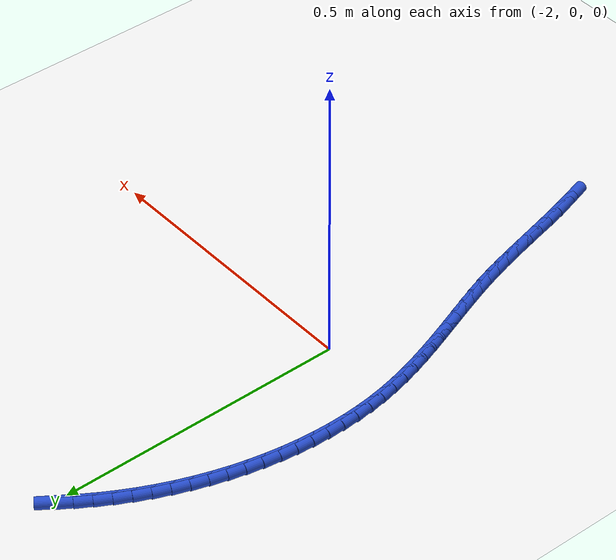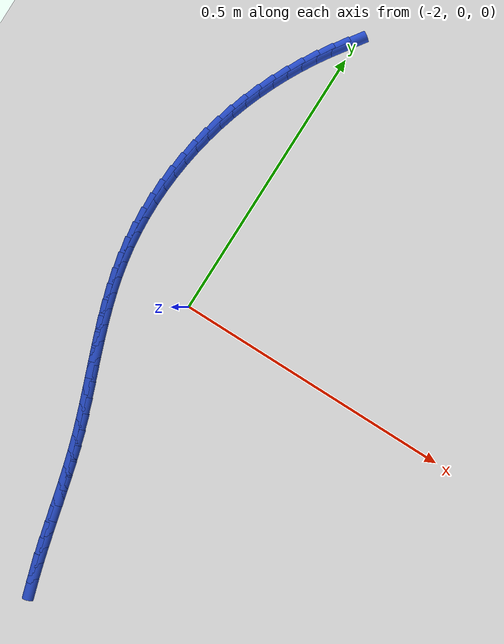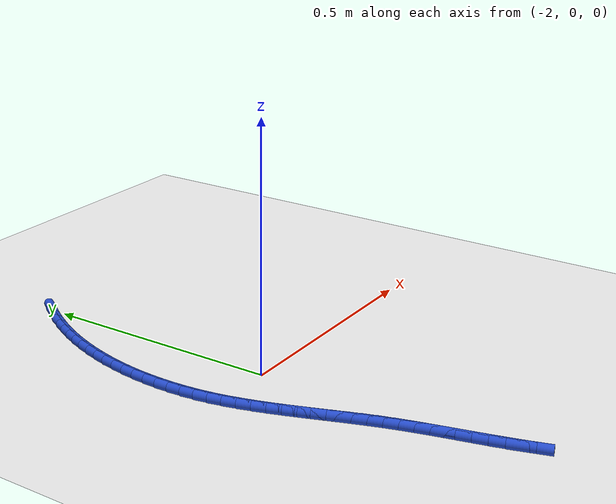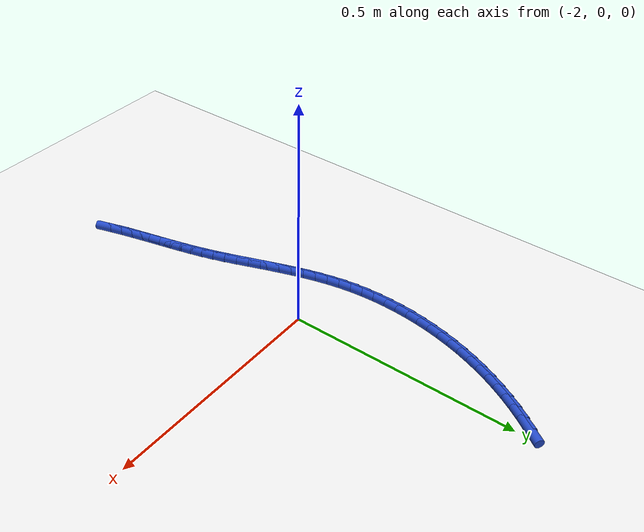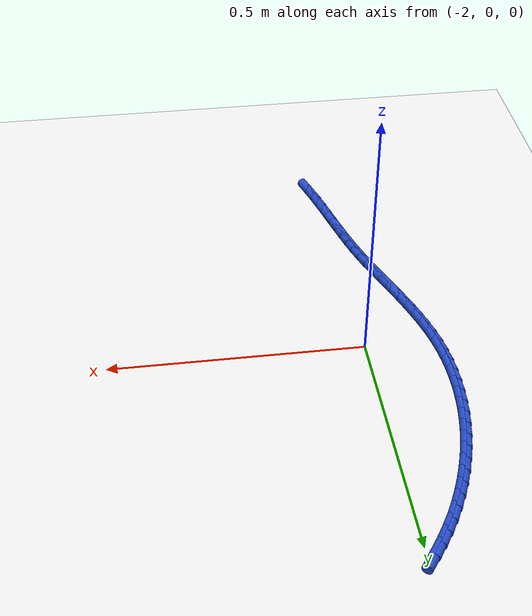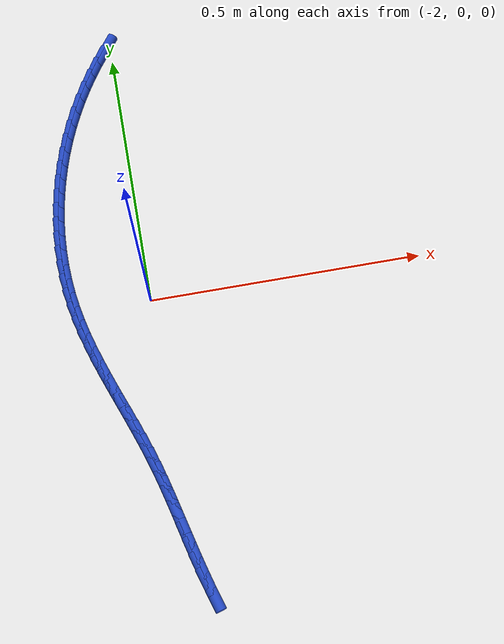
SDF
<sdf version="1.6">
 <world name="default">
  <model name="ground_plane">
   <static>1</static>
   <link name="link">
    <collision name="collision">
     <geometry><plane><normal>0 0 1</normal><size>100 100</size></plane></geometry>
     <surface><friction><ode><mu>100</mu><mu2>50</mu2></ode></friction></surface>
    </collision>
    <visual name="visual">
     <cast_shadows>0</cast_shadows>
     <geometry><plane><normal>0 0 1</normal><size>100 100</size></plane></geometry>
     <material>
      <script><uri>file://media/materials/scripts/gazebo.material</uri><name>Gazebo/WhiteGlow</name></script>
     </material>
    </visual>
   </link>
  </model>
  <model name="line">
   <link name="link_100">
    <pose>-2.0139855540574887 0.5182544695513112 0.01 0 1.57 0.9605735222294822</pose>
    <collision name="collision">
     <geometry><cylinder><radius>0.01</radius><length>0.08</length></cylinder></geometry>
    </collision>
    <visual name="visual">
     <material>
      <script><name>Gazebo/Blue</name><uri>file://media/materials/scripts/gazebo.material</uri></script>
     </material>
     <geometry><cylinder><radius>0.01</radius><length>0.08</length></cylinder></geometry>
    </visual>
   </link>
   <link name="link_101">
    <pose>-2.030164244204602 0.4951172835830111 0.01 0 1.57 1.001293382315827</pose>
    <collision name="collision">
     <geometry><cylinder><radius>0.01</radius><length>0.08</length></cylinder></geometry>
    </collision>
    <visual name="visual">
     <material>
      <script><name>Gazebo/Blue</name><uri>file://media/materials/scripts/gazebo.material</uri></script>
     </material>
     <geometry><cylinder><radius>0.01</radius><length>0.08</length></cylinder></geometry>
    </visual>
   </link>
   <link name="link_102">
    <pose>-2.0454129637026943 0.47130111411124304 0.01 0 1.57 1.042073513890765</pose>
    <collision name="collision">
     <geometry><cylinder><radius>0.01</radius><length>0.08</length></cylinder></geometry>
    </collision>
    <visual name="visual">
     <material>
      <script><name>Gazebo/Blue</name><uri>file://media/materials/scripts/gazebo.material</uri></script>
     </material>
     <geometry><cylinder><radius>0.01</radius><length>0.08</length></cylinder></geometry>
    </visual>
   </link>
   <link name="link_103">
    <pose>-2.0597038626648287 0.44683888521866805 0.01 0 1.57 1.0829619658160066</pose>
    <collision name="collision">
     <geometry><cylinder><radius>0.01</radius><length>0.08</length></cylinder></geometry>
    </collision>
    <visual name="visual">
     <material>
      <script><name>Gazebo/Blue</name><uri>file://media/materials/scripts/gazebo.material</uri></script>
     </material>
     <geometry><cylinder><radius>0.01</radius><length>0.08</length></cylinder></geometry>
    </visual>
   </link>
   <link name="link_104">
    <pose>-2.07300909120407 0.421763520987947 0.01 0 1.57 1.1240042019081184</pose>
    <collision name="collision">
     <geometry><cylinder><radius>0.01</radius><length>0.08</length></cylinder></geometry>
    </collision>
    <visual name="visual">
     <material>
      <script><name>Gazebo/Blue</name><uri>file://media/materials/scripts/gazebo.material</uri></script>
     </material>
     <geometry><cylinder><radius>0.01</radius><length>0.08</length></cylinder></geometry>
    </visual>
   </link>
   <link name="link_105">
    <pose>-2.085300799505579 0.3961079458754709 0.01 0 1.57 1.1651364799601855</pose>
    <collision name="collision">
     <geometry><cylinder><radius>0.01</radius><length>0.08</length></cylinder></geometry>
    </collision>
    <visual name="visual">
     <material>
      <script><name>Gazebo/Blue</name><uri>file://media/materials/scripts/gazebo.material</uri></script>
     </material>
     <geometry><cylinder><radius>0.01</radius><length>0.08</length></cylinder></geometry>
    </visual>
   </link>
   <link name="link_106">
    <pose>-2.0965521572744685 0.369910369241611 0.01 0 1.57 1.2060684940001019</pose>
    <collision name="collision">
     <geometry><cylinder><radius>0.01</radius><length>0.08</length></cylinder></geometry>
    </collision>
    <visual name="visual">
     <material>
      <script><name>Gazebo/Blue</name><uri>file://media/materials/scripts/gazebo.material</uri></script>
     </material>
     <geometry><cylinder><radius>0.01</radius><length>0.08</length></cylinder></geometry>
    </visual>
   </link>
   <link name="link_107">
    <pose>-2.1067399182539646 0.3432275790897737 0.01 0 1.57 1.2468562923244804</pose>
    <collision name="collision">
     <geometry><cylinder><radius>0.01</radius><length>0.08</length></cylinder></geometry>
    </collision>
    <visual name="visual">
     <material>
      <script><name>Gazebo/Blue</name><uri>file://media/materials/scripts/gazebo.material</uri></script>
     </material>
     <geometry><cylinder><radius>0.01</radius><length>0.08</length></cylinder></geometry>
    </visual>
   </link>
   <link name="link_108">
    <pose>-2.115841623333502 0.31612044376736786 0.01 0 1.57 1.2876421689406725</pose>
    <collision name="collision">
     <geometry><cylinder><radius>0.01</radius><length>0.08</length></cylinder></geometry>
    </collision>
    <visual name="visual">
     <material>
      <script><name>Gazebo/Blue</name><uri>file://media/materials/scripts/gazebo.material</uri></script>
     </material>
     <geometry><cylinder><radius>0.01</radius><length>0.08</length></cylinder></geometry>
    </visual>
   </link>
   <link name="link_109">
    <pose>-2.1238348134025116 0.28864983162180324 0.01 0 1.57 1.3285674898002886</pose>
    <collision name="collision">
     <geometry><cylinder><radius>0.01</radius><length>0.08</length></cylinder></geometry>
    </collision>
    <visual name="visual">
     <material>
      <script><name>Gazebo/Blue</name><uri>file://media/materials/scripts/gazebo.material</uri></script>
     </material>
     <geometry><cylinder><radius>0.01</radius><length>0.08</length></cylinder></geometry>
    </visual>
   </link>
   <link name="link_110">
    <pose>-2.1306970293504275 0.26087661100048865 0.01 0 1.57 1.3697724400306166</pose>
    <collision name="collision">
     <geometry><cylinder><radius>0.01</radius><length>0.08</length></cylinder></geometry>
    </collision>
    <visual name="visual">
     <material>
      <script><name>Gazebo/Blue</name><uri>file://media/materials/scripts/gazebo.material</uri></script>
     </material>
     <geometry><cylinder><radius>0.01</radius><length>0.08</length></cylinder></geometry>
    </visual>
   </link>
   <link name="link_111">
    <pose>-2.136405812066684 0.23286165025083336 0.01 0 1.57 1.4113956860137278</pose>
    <collision name="collision">
     <geometry><cylinder><radius>0.01</radius><length>0.08</length></cylinder></geometry>
    </collision>
    <visual name="visual">
     <material>
      <script><name>Gazebo/Blue</name><uri>file://media/materials/scripts/gazebo.material</uri></script>
     </material>
     <geometry><cylinder><radius>0.01</radius><length>0.08</length></cylinder></geometry>
    </visual>
   </link>
   <link name="link_112">
    <pose>-2.1409387024407134 0.2046658177202461 0.01 0 1.57 1.4535738826807318</pose>
    <collision name="collision">
     <geometry><cylinder><radius>0.01</radius><length>0.08</length></cylinder></geometry>
    </collision>
    <visual name="visual">
     <material>
      <script><name>Gazebo/Blue</name><uri>file://media/materials/scripts/gazebo.material</uri></script>
     </material>
     <geometry><cylinder><radius>0.01</radius><length>0.08</length></cylinder></geometry>
    </visual>
   </link>
   <link name="link_113">
    <pose>-2.144273241361949 0.17634998175613684 0.01 0 1.57 1.496440955202695</pose>
    <collision name="collision">
     <geometry><cylinder><radius>0.01</radius><length>0.08</length></cylinder></geometry>
    </collision>
    <visual name="visual">
     <material>
      <script><name>Gazebo/Blue</name><uri>file://media/materials/scripts/gazebo.material</uri></script>
     </material>
     <geometry><cylinder><radius>0.01</radius><length>0.08</length></cylinder></geometry>
    </visual>
   </link>
   <link name="link_114">
    <pose>-2.146386969719824 0.14797501070591434 0.01 0 1.57 1.5401270829545246</pose>
    <collision name="collision">
     <geometry><cylinder><radius>0.01</radius><length>0.08</length></cylinder></geometry>
    </collision>
    <visual name="visual">
     <material>
      <script><name>Gazebo/Blue</name><uri>file://media/materials/scripts/gazebo.material</uri></script>
     </material>
     <geometry><cylinder><radius>0.01</radius><length>0.08</length></cylinder></geometry>
    </visual>
   </link>
   <link name="link_115">
    <pose>-2.147257428403772 0.1196017729169874 0.01 0 1.57 -1.55683533993788</pose>
    <collision name="collision">
     <geometry><cylinder><radius>0.01</radius><length>0.08</length></cylinder></geometry>
    </collision>
    <visual name="visual">
     <material>
      <script><name>Gazebo/Blue</name><uri>file://media/materials/scripts/gazebo.material</uri></script>
     </material>
     <geometry><cylinder><radius>0.01</radius><length>0.08</length></cylinder></geometry>
    </visual>
   </link>
   <link name="link_116">
    <pose>-2.1468621583032257 0.09129113673676593 0.01 0 1.57 -1.5111429146714528</pose>
    <collision name="collision">
     <geometry><cylinder><radius>0.01</radius><length>0.08</length></cylinder></geometry>
    </collision>
    <visual name="visual">
     <material>
      <script><name>Gazebo/Blue</name><uri>file://media/materials/scripts/gazebo.material</uri></script>
     </material>
     <geometry><cylinder><radius>0.01</radius><length>0.08</length></cylinder></geometry>
    </visual>
   </link>
   <link name="link_117">
    <pose>-2.1451787003076195 0.06310397051265884 0.01 0 1.57 -1.4642794817210734</pose>
    <collision name="collision">
     <geometry><cylinder><radius>0.01</radius><length>0.08</length></cylinder></geometry>
    </collision>
    <visual name="visual">
     <material>
      <script><name>Gazebo/Blue</name><uri>file://media/materials/scripts/gazebo.material</uri></script>
     </material>
     <geometry><cylinder><radius>0.01</radius><length>0.08</length></cylinder></geometry>
    </visual>
   </link>
   <link name="link_118">
    <pose>-2.142184595306385 0.03510114259207512 0.01 0 1.57 -1.4161483744494114</pose>
    <collision name="collision">
     <geometry><cylinder><radius>0.01</radius><length>0.08</length></cylinder></geometry>
    </collision>
    <visual name="visual">
     <material>
      <script><name>Gazebo/Blue</name><uri>file://media/materials/scripts/gazebo.material</uri></script>
     </material>
     <geometry><cylinder><radius>0.01</radius><length>0.08</length></cylinder></geometry>
    </visual>
   </link>
   <link name="link_119">
    <pose>-2.137857384365703 0.007343521241138437 0.01 0 1.57 -1.368073335322618</pose>
    <collision name="collision">
     <geometry><cylinder><radius>0.01</radius><length>0.08</length></cylinder></geometry>
    </collision>
    <visual name="visual">
     <material>
      <script><name>Gazebo/Blue</name><uri>file://media/materials/scripts/gazebo.material</uri></script>
     </material>
     <geometry><cylinder><radius>0.01</radius><length>0.08</length></cylinder></geometry>
    </visual>
   </link>
   <link name="link_120">
    <pose>-2.132211342810018 -0.020124919238106588 0.01 0 1.57 -1.3254312612473649</pose>
    <collision name="collision">
     <geometry><cylinder><radius>0.01</radius><length>0.08</length></cylinder></geometry>
    </collision>
    <visual name="visual">
     <material>
      <script><name>Gazebo/Blue</name><uri>file://media/materials/scripts/gazebo.material</uri></script>
     </material>
     <geometry><cylinder><radius>0.01</radius><length>0.08</length></cylinder></geometry>
    </visual>
   </link>
   <link name="link_121">
    <pose>-2.125400307607433 -0.04732438848270661 0.01 0 1.57 -1.2896020849260996</pose>
    <collision name="collision">
     <geometry><cylinder><radius>0.01</radius><length>0.08</length></cylinder></geometry>
    </collision>
    <visual name="visual">
     <material>
      <script><name>Gazebo/Blue</name><uri>file://media/materials/scripts/gazebo.material</uri></script>
     </material>
     <geometry><cylinder><radius>0.01</radius><length>0.08</length></cylinder></geometry>
    </visual>
   </link>
   <link name="link_122">
    <pose>-2.117611253952663 -0.07429033629070539 0.01 0 1.57 -1.2606062650558665</pose>
    <collision name="collision">
     <geometry><cylinder><radius>0.01</radius><length>0.08</length></cylinder></geometry>
    </collision>
    <visual name="visual">
     <material>
      <script><name>Gazebo/Blue</name><uri>file://media/materials/scripts/gazebo.material</uri></script>
     </material>
     <geometry><cylinder><radius>0.01</radius><length>0.08</length></cylinder></geometry>
    </visual>
   </link>
   <link name="link_123">
    <pose>-2.1090311570404254 -0.10105821246014679 0.01 0 1.57 -1.2384030128663903</pose>
    <collision name="collision">
     <geometry><cylinder><radius>0.01</radius><length>0.08</length></cylinder></geometry>
    </collision>
    <visual name="visual">
     <material>
      <script><name>Gazebo/Blue</name><uri>file://media/materials/scripts/gazebo.material</uri></script>
     </material>
     <geometry><cylinder><radius>0.01</radius><length>0.08</length></cylinder></geometry>
    </visual>
   </link>
   <link name="link_124">
    <pose>-2.099846992065436 -0.12766346678907464 0.01 0 1.57 -1.2229307689024895</pose>
    <collision name="collision">
     <geometry><cylinder><radius>0.01</radius><length>0.08</length></cylinder></geometry>
    </collision>
    <visual name="visual">
     <material>
      <script><name>Gazebo/Blue</name><uri>file://media/materials/scripts/gazebo.material</uri></script>
     </material>
     <geometry><cylinder><radius>0.01</radius><length>0.08</length></cylinder></geometry>
    </visual>
   </link>
   <link name="link_125">
    <pose>-2.090245734222409 -0.1541415490755334 0.01 0 1.57 -1.2141374890386685</pose>
    <collision name="collision">
     <geometry><cylinder><radius>0.01</radius><length>0.08</length></cylinder></geometry>
    </collision>
    <visual name="visual">
     <material>
      <script><name>Gazebo/Blue</name><uri>file://media/materials/scripts/gazebo.material</uri></script>
     </material>
     <geometry><cylinder><radius>0.01</radius><length>0.08</length></cylinder></geometry>
    </visual>
   </link>
   <link name="link_126">
    <pose>-2.0804143587060615 -0.18052790911756547 0.01 0 1.57 -1.2120011785899536</pose>
    <collision name="collision">
     <geometry><cylinder><radius>0.01</radius><length>0.08</length></cylinder></geometry>
    </collision>
    <visual name="visual">
     <material>
      <script><name>Gazebo/Blue</name><uri>file://media/materials/scripts/gazebo.material</uri></script>
     </material>
     <geometry><cylinder><radius>0.01</radius><length>0.08</length></cylinder></geometry>
    </visual>
   </link>
   <link name="link_127">
    <pose>-2.07053984071111 -0.20685799671321545 0.01 0 1.57 -1.2165415430570916</pose>
    <collision name="collision">
     <geometry><cylinder><radius>0.01</radius><length>0.08</length></cylinder></geometry>
    </collision>
    <visual name="visual">
     <material>
      <script><name>Gazebo/Blue</name><uri>file://media/materials/scripts/gazebo.material</uri></script>
     </material>
     <geometry><cylinder><radius>0.01</radius><length>0.08</length></cylinder></geometry>
    </visual>
   </link>
   <link name="link_128">
    <pose>-2.0608091554322696 -0.23316726166052706 0.01 0 1.57 -1.2278233505292329</pose>
    <collision name="collision">
     <geometry><cylinder><radius>0.01</radius><length>0.08</length></cylinder></geometry>
    </collision>
    <visual name="visual">
     <material>
      <script><name>Gazebo/Blue</name><uri>file://media/materials/scripts/gazebo.material</uri></script>
     </material>
     <geometry><cylinder><radius>0.01</radius><length>0.08</length></cylinder></geometry>
    </visual>
   </link>
   <link name="link_129">
    <pose>-2.051409278064257 -0.2594911537575442 0.01 0 1.57 -1.2459514486265786</pose>
    <collision name="collision">
     <geometry><cylinder><radius>0.01</radius><length>0.08</length></cylinder></geometry>
    </collision>
    <visual name="visual">
     <material>
      <script><name>Gazebo/Blue</name><uri>file://media/materials/scripts/gazebo.material</uri></script>
     </material>
     <geometry><cylinder><radius>0.01</radius><length>0.08</length></cylinder></geometry>
    </visual>
   </link>
   <link name="link_130">
    <pose>-2.0425271838017864 -0.2858651228023106 0.01 0 1.57 -1.2703431306392174</pose>
    <collision name="collision">
     <geometry><cylinder><radius>0.01</radius><length>0.08</length></cylinder></geometry>
    </collision>
    <visual name="visual">
     <material>
      <script><name>Gazebo/Blue</name><uri>file://media/materials/scripts/gazebo.material</uri></script>
     </material>
     <geometry><cylinder><radius>0.01</radius><length>0.08</length></cylinder></geometry>
    </visual>
   </link>
   <link name="link_131">
    <pose>-2.034329586784084 -0.3123232475309808 0.01 0 1.57 -1.293619150744632</pose>
    <collision name="collision">
     <geometry><cylinder><radius>0.01</radius><length>0.08</length></cylinder></geometry>
    </collision>
    <visual name="visual">
     <material>
      <script><name>Gazebo/Blue</name><uri>file://media/materials/scripts/gazebo.material</uri></script>
     </material>
     <geometry><cylinder><radius>0.01</radius><length>0.08</length></cylinder></geometry>
    </visual>
   </link>
   <link name="link_132">
    <pose>-2.0267726512450266 -0.33888535880643567 0.01 0 1.57 -1.3112104932519524</pose>
    <collision name="collision">
     <geometry><cylinder><radius>0.01</radius><length>0.08</length></cylinder></geometry>
    </collision>
    <visual name="visual">
     <material>
      <script><name>Gazebo/Blue</name><uri>file://media/materials/scripts/gazebo.material</uri></script>
     </material>
     <geometry><cylinder><radius>0.01</radius><length>0.08</length></cylinder></geometry>
    </visual>
   </link>
   <link name="link_133">
    <pose>-2.0196876962882198 -0.3655628392446075 0.01 0 1.57 -1.322931237999049</pose>
    <collision name="collision">
     <geometry><cylinder><radius>0.01</radius><length>0.08</length></cylinder></geometry>
    </collision>
    <visual name="visual">
     <material>
      <script><name>Gazebo/Blue</name><uri>file://media/materials/scripts/gazebo.material</uri></script>
     </material>
     <geometry><cylinder><radius>0.01</radius><length>0.08</length></cylinder></geometry>
    </visual>
   </link>
   <link name="link_134">
    <pose>-2.0129044027488243 -0.3923669606001068 0.01 0 1.57 -1.3287387235723722</pose>
    <collision name="collision">
     <geometry><cylinder><radius>0.01</radius><length>0.08</length></cylinder></geometry>
    </collision>
    <visual name="visual">
     <material>
      <script><name>Gazebo/Blue</name><uri>file://media/materials/scripts/gazebo.material</uri></script>
     </material>
     <geometry><cylinder><radius>0.01</radius><length>0.08</length></cylinder></geometry>
    </visual>
   </link>
   <link name="link_135">
    <pose>-2.0062524514620046 -0.4193089946275442 0.01 0 1.57 -1.3286641500457739</pose>
    <collision name="collision">
     <geometry><cylinder><radius>0.01</radius><length>0.08</length></cylinder></geometry>
    </collision>
    <visual name="visual">
     <material>
      <script><name>Gazebo/Blue</name><uri>file://media/materials/scripts/gazebo.material</uri></script>
     </material>
     <geometry><cylinder><radius>0.01</radius><length>0.08</length></cylinder></geometry>
    </visual>
   </link>
   <link name="link_136">
    <pose>-1.9995615232629216 -0.4464002130815291 0.01 0 1.57 -1.3228047166897816</pose>
    <collision name="collision">
     <geometry><cylinder><radius>0.01</radius><length>0.08</length></cylinder></geometry>
    </collision>
    <visual name="visual">
     <material>
      <script><name>Gazebo/Blue</name><uri>file://media/materials/scripts/gazebo.material</uri></script>
     </material>
     <geometry><cylinder><radius>0.01</radius><length>0.08</length></cylinder></geometry>
    </visual>
   </link>
   <link name="link_137">
    <pose>-1.9926612989867385 -0.47365188771667205 0.01 0 1.57 -1.3113200431945644</pose>
    <collision name="collision">
     <geometry><cylinder><radius>0.01</radius><length>0.08</length></cylinder></geometry>
    </collision>
    <visual name="visual">
     <material>
      <script><name>Gazebo/Blue</name><uri>file://media/materials/scripts/gazebo.material</uri></script>
     </material>
     <geometry><cylinder><radius>0.01</radius><length>0.08</length></cylinder></geometry>
    </visual>
   </link>
   <link name="link_138">
    <pose>-1.985381459468618 -0.501075290287583 0.01 0 1.57 -1.2944324174126878</pose>
    <collision name="collision">
     <geometry><cylinder><radius>0.01</radius><length>0.08</length></cylinder></geometry>
    </collision>
    <visual name="visual">
     <material>
      <script><name>Gazebo/Blue</name><uri>file://media/materials/scripts/gazebo.material</uri></script>
     </material>
     <geometry><cylinder><radius>0.01</radius><length>0.08</length></cylinder></geometry>
    </visual>
   </link>
   <link name="link_139">
    <pose>-1.9775516855437227 -0.5286816925488721 0.01 0 1.57 -1.2724308612212958</pose>
    <collision name="collision">
     <geometry><cylinder><radius>0.01</radius><length>0.08</length></cylinder></geometry>
    </collision>
    <visual name="visual">
     <material>
      <script><name>Gazebo/Blue</name><uri>file://media/materials/scripts/gazebo.material</uri></script>
     </material>
     <geometry><cylinder><radius>0.01</radius><length>0.08</length></cylinder></geometry>
    </visual>
   </link>
  </model>
 </world>
</sdf>
